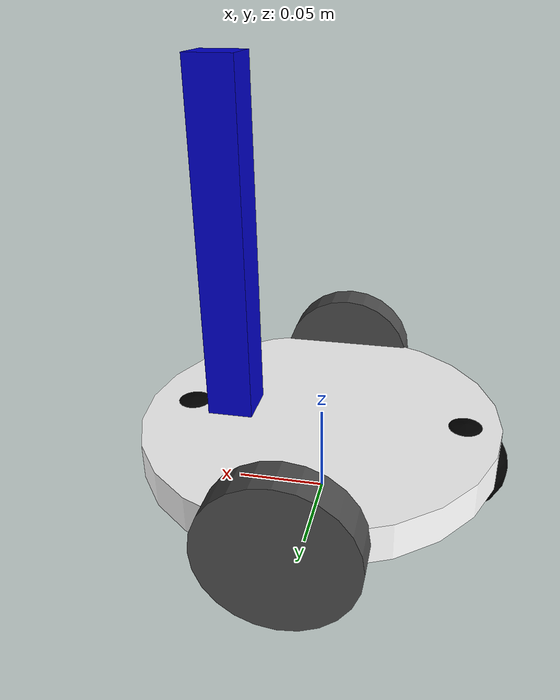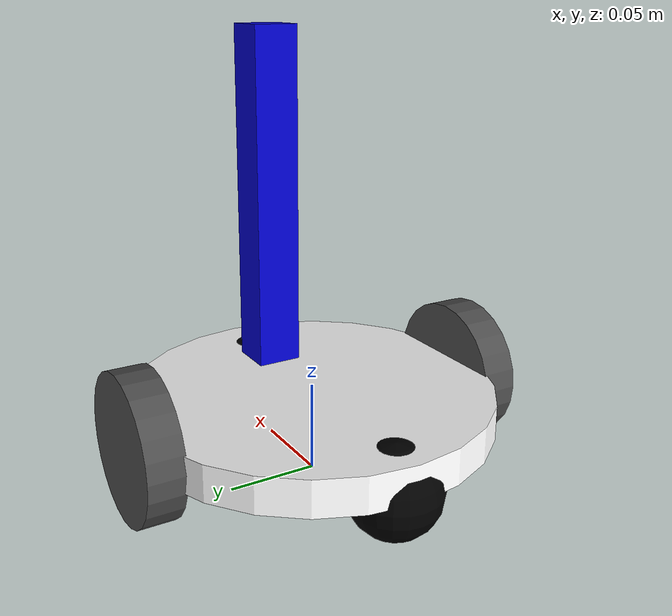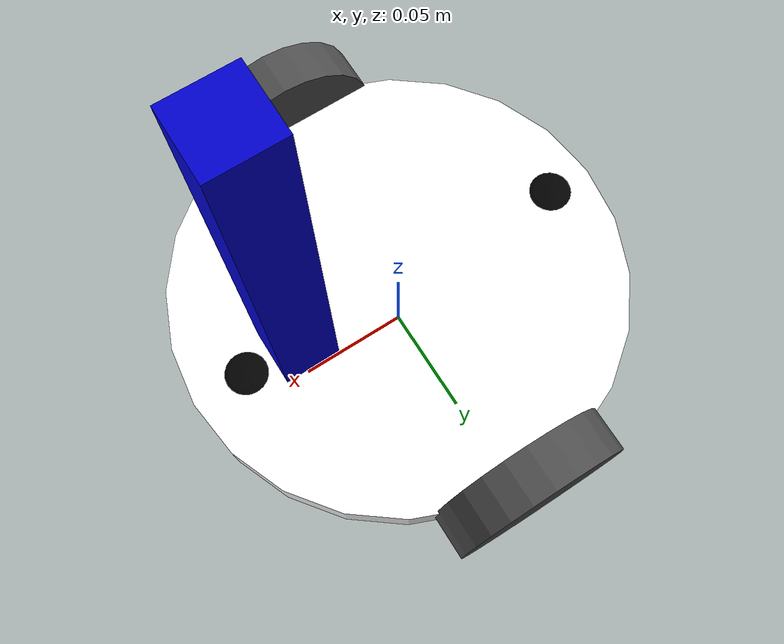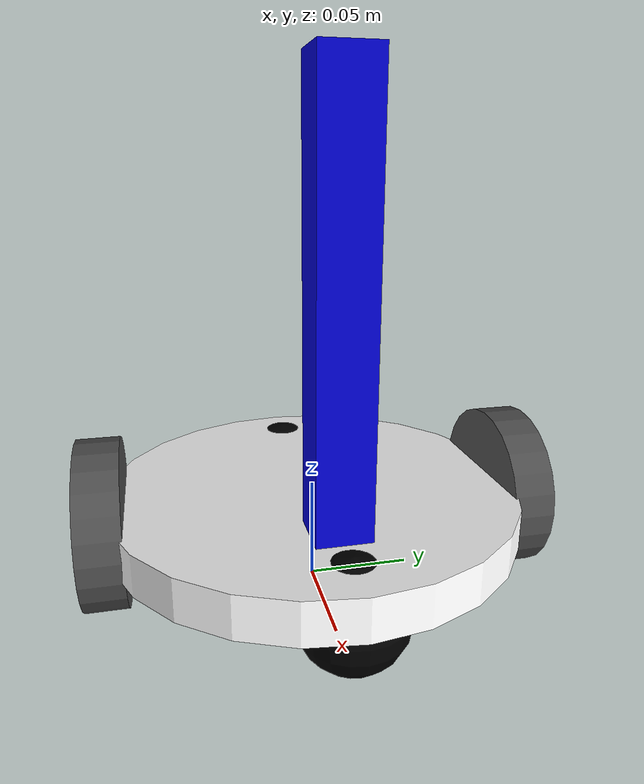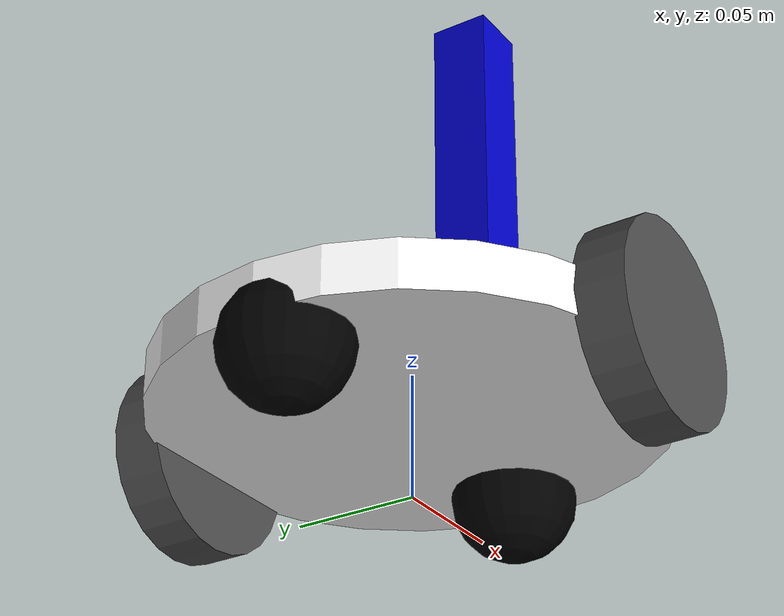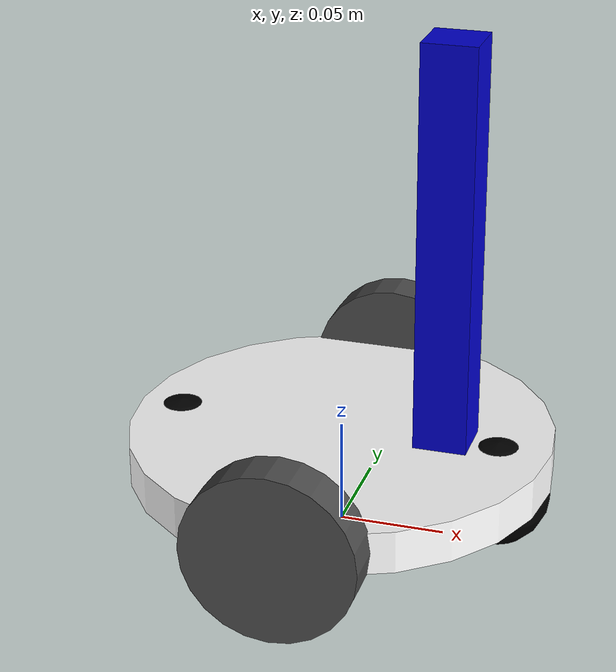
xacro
<?xml version="1.0" ?>
<robot name="reactive_bot"
  xmlns:xacro="http://www.ros.org/wiki/xacro">
  <!-- Based on this: https://github.com/qboticslabs/mastering_ros/blob/master/chapter_2_codes/mastering_ros_robot_description_pkg/urdf/diff_wheeled_robot.xacro -->

  <!-- Wheels -->
  <!-- in kg-->
  <!-- Defining the colors used in this robot -->
  <material name="Black">
    <color rgba="0.0 0.0 0.0 1.0"/>
  </material>
  <material name="White">
    <color rgba="1.0 1.0 1.0 1.0"/>
  </material>
  <material name="Blue">
    <color rgba="0.0 0.0 0.8 1.0"/>
  </material>
  <!-- PROPERTY LIST -->
  <!--All units in m-kg-s-radians unit system -->
  <!-- Main body radius and height -->
  <!-- Main Body Cylinder base   -->
  <!-- in kg-->
  <!-- caster wheel radius and height -->
  <!-- caster wheel mass -->
  <!-- in kg-->
  <!-- caster wheel radius and height -->
  <!-- caster wheel mass -->
  <!-- in kg-->
  <!-- Wheels -->
  <!-- in kg-->
  <!-- Hokuyo Laser scanner -->
  <!-- Macro for calculating inertia of cylinder -->

  <!-- BASE-FOOTPRINT -->
  <!-- link_base_footprint is a fictitious link(frame) that is on the ground right below link_base origin -->
  <link name="link_base_footprint">
    <inertial>
      <mass value="0.0001"/>
      <origin xyz="0 0 0"/>
      <inertia ixx="0.0001" ixy="0.0" ixz="0.0" iyy="0.0001" iyz="0.0" izz="0.0001"/>
    </inertial>
    <visual>
      <origin rpy="0 0 0" xyz="0 0 0"/>
      <geometry>
        <box size="0.001 0.001 0.001"/>
      </geometry>
    </visual>
  </link>
  <gazebo reference="link_base_footprint">
    <turnGravityOff>false</turnGravityOff>
  </gazebo>
  <joint name="link_base_footprint_joint" type="fixed">
    <origin rpy="0 0 0" xyz="0 0 0.04"/>
    <parent link="link_base_footprint"/>
    <child link="link_base"/>
  </joint>

  <!-- BASE-LINK -->
  <!--Actual body/chassis of the robot-->
  <link name="link_base">
    <inertial>
      <mass value="5"/>
      <origin xyz="0 0 0"/>
      <!--The 3x3 rotational inertia matrix. -->
      <inertia ixx="0.0282916666667" ixy="0" ixz="0" iyy="0.0282916666667" iyz="0" izz="0.05625"/>
    </inertial>
    <visual>
      <origin rpy="0 0 0" xyz="0 0 0"/>
      <geometry>
        <cylinder length="0.02" radius="0.1"/>
      </geometry>
      <material name="White"/>
    </visual>
    <collision>
      <origin rpy="0 0 0 " xyz="0 0 0"/>
      <geometry>
        <cylinder length="0.02" radius="0.1"/>
      </geometry>
    </collision>
  </link>
  <gazebo reference="link_base">
    <material>Gazebo/White</material>
    <turnGravityOff>false</turnGravityOff>
  </gazebo>

  <!-- RIGHT WHEEL -->
  <link name="link_right_wheel">
    <visual>
      <origin rpy="1.57079632679 0  0 " xyz="0 0 0"/>
      <geometry>
        <cylinder length="0.02" radius="0.04"/>
      </geometry>
      <material name="DarkGray"/>
    </visual>
    <collision>
      <origin rpy="1.57079632679 0 0 " xyz="0 0 0"/>
      <geometry>
        <cylinder length="0.02" radius="0.04"/>
      </geometry>
    </collision>
    <inertial>
      <mass value="2.5"/>
      <origin xyz="0 0 0"/>
      <inertia ixx="0.00108333333333" ixy="0" ixz="0" iyy="0.00108333333333" iyz="0" izz="0.002"/>
    </inertial>
  </link>
  <gazebo reference="link_right_wheel">
    <mu1 value="1.0"/>
    <mu2 value="1.0"/>
    <kp value="10000000.0"/>
    <kd value="1.0"/>
    <fdir1 value="1 0 0"/>
    <material>Gazebo/Grey</material>
    <turnGravityOff>false</turnGravityOff>
  </gazebo>
  <joint name="joint_right_wheel" type="continuous">
    <parent link="link_base"/>
    <child link="link_right_wheel"/>
    <origin rpy="0 0 0" xyz="0.0 -0.1 0.0"/>
    <axis rpy="0  0" xyz="0 1 0"/>
    <limit effort="100" velocity="100"/>
    <joint_properties damping="0.0" friction="0.0"/>
  </joint>
  <!-- Transmission is important to link the joints and the controller -->
  <transmission name="joint_right_wheel_trans">
    <type>transmission_interface/SimpleTransmission</type>
    <joint name="joint_right_wheel"/>
    <actuator name="joint_right_wheel_motor">
      <hardwareInterface>EffortJointInterface</hardwareInterface>
      <mechanicalReduction>1</mechanicalReduction>
    </actuator>
  </transmission>

  <!--LEFT WHEEL -->
  <link name="link_left_wheel">
    <visual>
      <origin rpy="1.57079632679 0  0 " xyz="0 0 0"/>
      <geometry>
        <cylinder length="0.02" radius="0.04"/>
      </geometry>
      <material name="DarkGray"/>
    </visual>
    <collision>
      <origin rpy="1.57079632679 0 0 " xyz="0 0 0"/>
      <geometry>
        <cylinder length="0.02" radius="0.04"/>
      </geometry>
    </collision>
    <inertial>
      <mass value="2.5"/>
      <origin xyz="0 0 0"/>
      <inertia ixx="0.00108333333333" ixy="0" ixz="0" iyy="0.00108333333333" iyz="0" izz="0.002"/>
    </inertial>
  </link>
  <gazebo reference="link_left_wheel">
    <mu1 value="1.0"/>
    <mu2 value="1.0"/>
    <kp value="10000000.0"/>
    <kd value="1.0"/>
    <fdir1 value="1 0 0"/>
    <material>Gazebo/Grey</material>
    <turnGravityOff>false</turnGravityOff>
  </gazebo>
  <joint name="joint_left_wheel" type="continuous">
    <parent link="link_base"/>
    <child link="link_left_wheel"/>
    <origin rpy="0 0 0" xyz="0.0 0.1 0.0"/>
    <axis rpy="0  0" xyz="0 1 0"/>
    <limit effort="100" velocity="100"/>
    <joint_properties damping="0.0" friction="0.0"/>
  </joint>
  <!-- Transmission is important to link the joints and the controller -->
  <transmission name="joint_left_wheel_trans">
    <type>transmission_interface/SimpleTransmission</type>
    <joint name="joint_left_wheel"/>
    <actuator name="joint_left_wheel_motor">
      <hardwareInterface>EffortJointInterface</hardwareInterface>
      <mechanicalReduction>1</mechanicalReduction>
    </actuator>
  </transmission>

  <!-- FRONT CASTER  -->
  <link name="link_front_caster">
    <visual>
      <origin rpy="1.57079632679 0 0" xyz="0 0.02 0"/>
      <geometry>
        <sphere radius="0.025"/>
      </geometry>
      <material name="Black"/>
    </visual>
    <collision>
      <geometry>
        <sphere radius="0.025"/>
      </geometry>
      <origin rpy="1.57079632679 0 0" xyz="0 0.02 0"/>
    </collision>
    <inertial>
      <mass value="0.5"/>
      <origin xyz="0 0 0"/>
      <inertia ixx="0.001" ixy="0.0" ixz="0.0" iyy="0.001" iyz="0.0" izz="0.001"/>
    </inertial>
  </link>
  <joint name="caster_front_joint" type="fixed">
    <parent link="link_base"/>
    <child link="link_front_caster"/>
    <origin rpy="-1.57079632679 0 0" xyz="0.075 0.0 0.007"/>
  </joint>
  <gazebo reference="link_front_caster">
    <turnGravityOff>false</turnGravityOff>
  </gazebo>

  <!--BACK CASTER  -->
  <link name="link_back_caster">
    <visual>
      <origin rpy="1.57079632679 0 0" xyz="0.02 0.02 0 "/>
      <geometry>
        <sphere radius="0.025"/>
      </geometry>
      <material name="Black"/>
    </visual>
    <collision>
      <geometry>
        <sphere radius="0.025"/>
      </geometry>
      <origin rpy="1.57079632679 0 0" xyz="0 0.02 0 "/>
    </collision>
    <inertial>
      <mass value="0.5"/>
      <origin xyz="0 0 0"/>
      <inertia ixx="0.001" ixy="0.0" ixz="0.0" iyy="0.001" iyz="0.0" izz="0.001"/>
    </inertial>
  </link>
  <joint name="caster_back_joint" type="fixed">
    <parent link="link_base"/>
    <child link="link_back_caster"/>
    <origin rpy="-1.57079632679 0 0" xyz="-0.100 0.0 0.007"/>
  </joint>
  <gazebo reference="link_back_caster">
    <turnGravityOff>false</turnGravityOff>
  </gazebo>

  <!-- SENSORS -->
  <!-- LASER SCAN a.k.a. Hokuyo -->
  <link name="link_hokuyo">
    <visual>
      <origin rpy="0 0 0" xyz="0 0 0"/>
      <geometry>
        <box size="0.025 0.025 0.2"/>
      </geometry>
      <material name="Blue"/>
    </visual>
  </link>
  <joint name="joint_hukuyo" type="fixed">
    <origin rpy="0 0 0" xyz="0.050 0 0.1"/>
    <parent link="link_base"/>
    <child link="link_hokuyo"/>
  </joint>
  <gazebo reference="link_hokuyo">
    <material>Gazebo/Blue</material>
    <turnGravityOff>false</turnGravityOff>

    <!-- Reference: http://wiki.ros.org/urdf/XML/sensor and http://sdformat.org/spec?ver=1.6&elem=sensor-->
    <sensor name="head_hokuyo_sensor" type="ray">
      <pose>0.025 0 0 0 0 0</pose>
      <visualize>true</visualize>
      <update_rate>20</update_rate>
      <ray>
        <scan>
          <horizontal>
            <samples>1080</samples>
            <resolution>1</resolution>
            <!-- When changing to -3.14 and +3.14, the laser would scan an invisible wall. -->
            <!-- TODO: Try to fix this, so it can use 360 laser -->
            <!-- 2.26892803 rad = 130 deg -->
            <min_angle>-2.26892803</min_angle>
            <max_angle>+2.26892803</max_angle>
          </horizontal>
        </scan>
        <range>
          <min>0.10</min>
          <max>10.0</max>
          <resolution>0.01</resolution>
        </range>
        <noise>
          <type>gaussian</type>
          <mean>0.0</mean>
          <stddev>0.01</stddev>
        </noise>
      </ray>
      <plugin filename="libgazebo_ros_laser.so" name="gazebo_ros_hokuyo_controller">
        <topicName>/reactive_bot/laser/scan</topicName>
        <frameName>link_hokuyo</frameName>
      </plugin>
    </sensor>
  </gazebo>

  <!-- Differential drive controller  -->
  <gazebo>
    <!-- Issue with this plugin when deleting model in Gazebo: https://github.com/ros-simulation/gazebo_ros_pkgs/issues/123 -->
    <plugin filename="libgazebo_ros_diff_drive.so" name="differential_drive_controller">
      <rosDebugLevel>Debug</rosDebugLevel>
      <publishWheelTF>True</publishWheelTF>
      <publishTf>1</publishTf>
      <publishWheelJointState>true</publishWheelJointState>
      <alwaysOn>true</alwaysOn>
      <updateRate>100.0</updateRate>
      <leftJoint>joint_left_wheel</leftJoint>
      <rightJoint>joint_right_wheel</rightJoint>
      <wheelSeparation>0.2</wheelSeparation>
      <wheelDiameter>0.08</wheelDiameter>
      <broadcastTF>1</broadcastTF>
      <wheelTorque>30</wheelTorque>
      <wheelAcceleration>1.8</wheelAcceleration>
      <!-- This defines the topic to which we should publish the message to control the bot. -->
      <!-- In this plugin, the type of message is Twist (sensor_msgs/Twist). -->
      <!-- Therefore the controller only needs to publish a Twist message to the /cmd_vel topic. -->
      <commandTopic>cmd_vel</commandTopic>
      <odometryFrame>odom</odometryFrame>
      <odometryTopic>odom</odometryTopic>
      <robotBaseFrame>link_base</robotBaseFrame>
    </plugin>
  </gazebo>
</robot>
